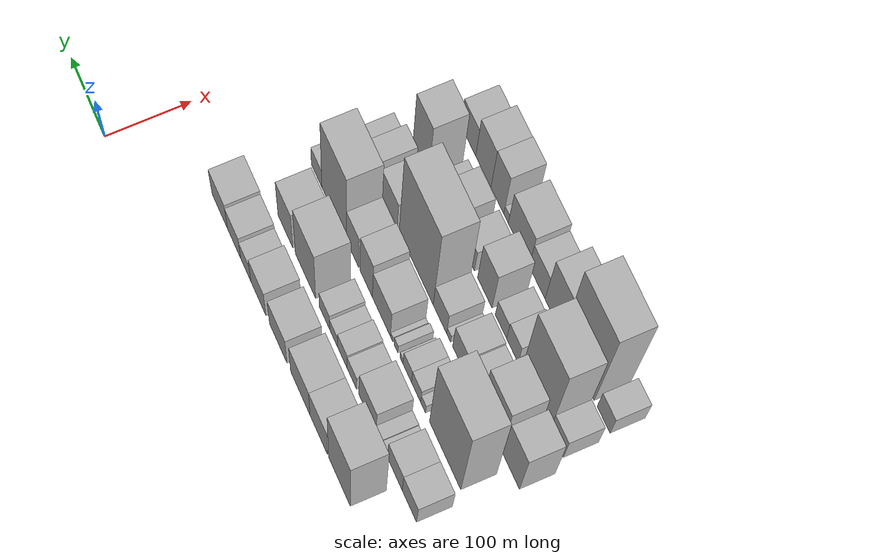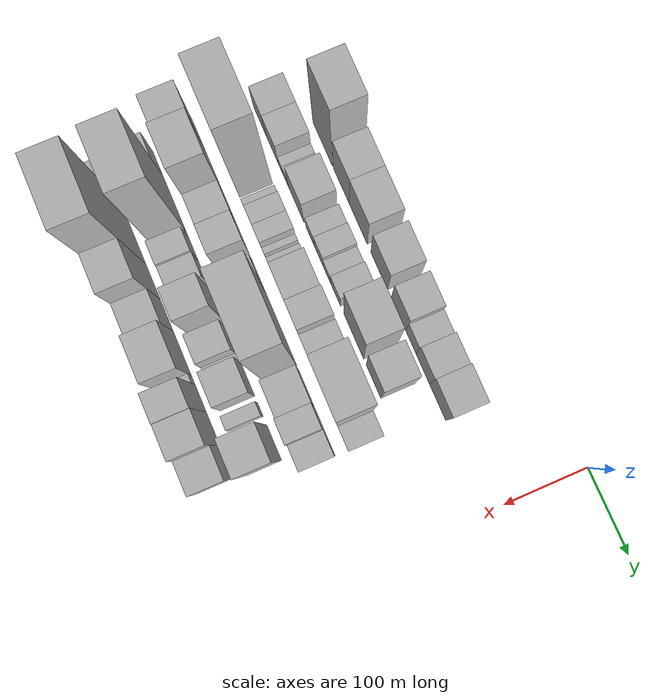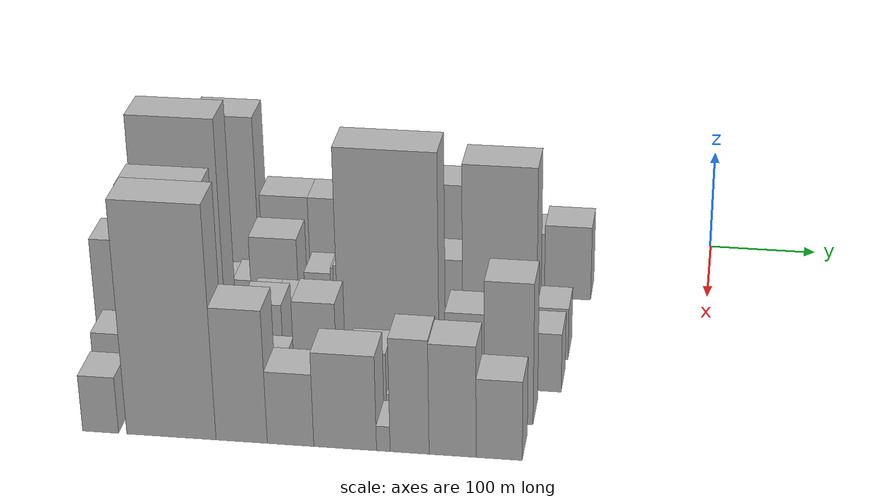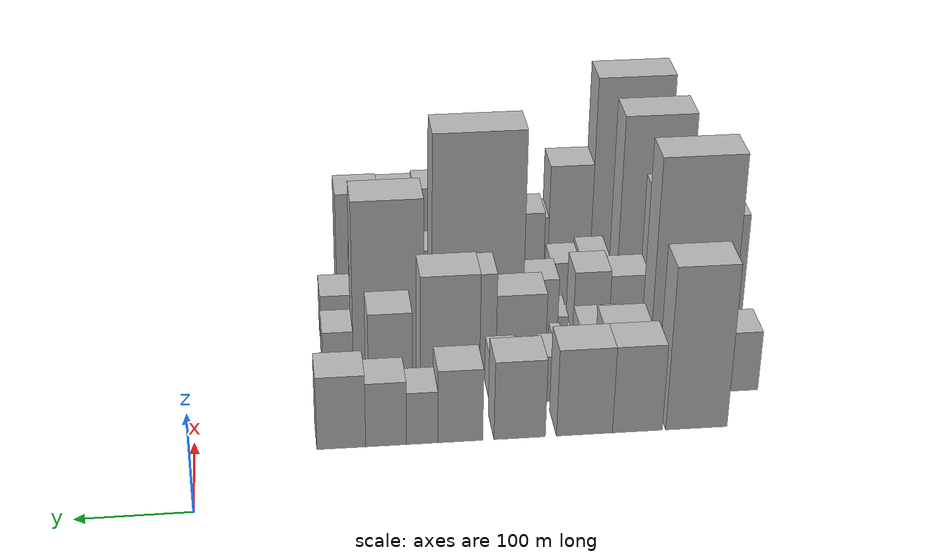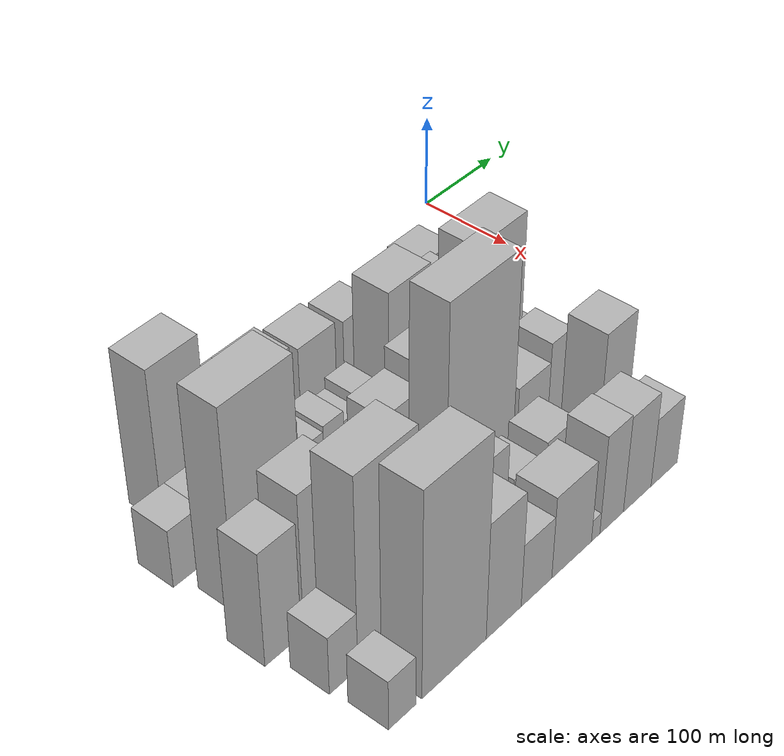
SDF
<sdf version="1.6">
 <world name="default">
  <model name="building_11">
   <static>1</static>
   <pose>100.0000 -446.1428 0 0.000000 0.000000 0.000000</pose>
   <link name="link">
    <pose>0 0 84.00 0 0 0</pose>
    <collision name="collision"><geometry><box><size>40.0000 55.7430 168.0000</size></box></geometry></collision>
    <visual name="visual">
     <cast_shadows>0</cast_shadows>
     <geometry><box><size>40.0000 55.7430 168.0000</size></box></geometry>
     <material>
      <script>
       <uri>model://HANNAS_wall/materials/scripts</uri>
       <uri>model://HANNAS_wall/materials/textures</uri>
       <name>vrc/HANNAS_wall</name>
      </script>
     </material>
    </visual>
   </link>
  </model>
  <model name="building_12">
   <static>1</static>
   <pose>100.0000 -392.7327 0 0.000000 0.000000 0.000000</pose>
   <link name="link">
    <pose>0 0 45.00 0 0 0</pose>
    <collision name="collision"><geometry><box><size>40.0000 45.0773 90.0000</size></box></geometry></collision>
    <visual name="visual">
     <cast_shadows>0</cast_shadows>
     <geometry><box><size>40.0000 45.0773 90.0000</size></box></geometry>
     <material>
      <script>
       <uri>model://HANNAS_wall/materials/scripts</uri>
       <uri>model://HANNAS_wall/materials/textures</uri>
       <name>vrc/HANNAS_wall</name>
      </script>
     </material>
    </visual>
   </link>
  </model>
  <model name="building_13">
   <static>1</static>
   <pose>100.0000 -344.9859 0 0.000000 0.000000 0.000000</pose>
   <link name="link">
    <pose>0 0 45.00 0 0 0</pose>
    <collision name="collision"><geometry><box><size>40.0000 50.4162 90.0000</size></box></geometry></collision>
    <visual name="visual">
     <cast_shadows>0</cast_shadows>
     <geometry><box><size>40.0000 50.4162 90.0000</size></box></geometry>
     <material>
      <script>
       <uri>model://HANNAS_wall/materials/scripts</uri>
       <uri>model://HANNAS_wall/materials/textures</uri>
       <name>vrc/HANNAS_wall</name>
      </script>
     </material>
    </visual>
   </link>
  </model>
  <model name="building_14">
   <static>1</static>
   <pose>100.0000 -286.7651 0 0.000000 0.000000 0.000000</pose>
   <link name="link">
    <pose>0 0 40.50 0 0 0</pose>
    <collision name="collision"><geometry><box><size>40.0000 46.0253 81.0000</size></box></geometry></collision>
    <visual name="visual">
     <cast_shadows>0</cast_shadows>
     <geometry><box><size>40.0000 46.0253 81.0000</size></box></geometry>
     <material>
      <script>
       <uri>model://HANNAS_wall/materials/scripts</uri>
       <uri>model://HANNAS_wall/materials/textures</uri>
       <name>vrc/HANNAS_wall</name>
      </script>
     </material>
    </visual>
   </link>
  </model>
  <model name="building_15">
   <static>1</static>
   <pose>100.0000 -233.7372 0 0.000000 0.000000 0.000000</pose>
   <link name="link">
    <pose>0 0 37.50 0 0 0</pose>
    <collision name="collision"><geometry><box><size>40.0000 40.0307 75.0000</size></box></geometry></collision>
    <visual name="visual">
     <cast_shadows>0</cast_shadows>
     <geometry><box><size>40.0000 40.0307 75.0000</size></box></geometry>
     <material>
      <script>
       <uri>model://HANNAS_wall/materials/scripts</uri>
       <uri>model://HANNAS_wall/materials/textures</uri>
       <name>vrc/HANNAS_wall</name>
      </script>
     </material>
    </visual>
   </link>
  </model>
  <model name="building_16">
   <static>1</static>
   <pose>100.0000 -199.8380 0 0.000000 0.000000 0.000000</pose>
   <link name="link">
    <pose>0 0 27.00 0 0 0</pose>
    <collision name="collision"><geometry><box><size>40.0000 27.7676 54.0000</size></box></geometry></collision>
    <visual name="visual">
     <cast_shadows>0</cast_shadows>
     <geometry><box><size>40.0000 27.7676 54.0000</size></box></geometry>
     <material>
      <script>
       <uri>model://HANNAS_wall/materials/scripts</uri>
       <uri>model://HANNAS_wall/materials/textures</uri>
       <name>vrc/HANNAS_wall</name>
      </script>
     </material>
    </visual>
   </link>
  </model>
  <model name="building_17">
   <static>1</static>
   <pose>100.0000 -167.9313 0 0.000000 0.000000 0.000000</pose>
   <link name="link">
    <pose>0 0 33.00 0 0 0</pose>
    <collision name="collision"><geometry><box><size>40.0000 36.0459 66.0000</size></box></geometry></collision>
    <visual name="visual">
     <cast_shadows>0</cast_shadows>
     <geometry><box><size>40.0000 36.0459 66.0000</size></box></geometry>
     <material>
      <script>
       <uri>model://HANNAS_wall/materials/scripts</uri>
       <uri>model://HANNAS_wall/materials/textures</uri>
       <name>vrc/HANNAS_wall</name>
      </script>
     </material>
    </visual>
   </link>
  </model>
  <model name="building_18">
   <static>1</static>
   <pose>100.0000 -128.4174 0 0.000000 0.000000 0.000000</pose>
   <link name="link">
    <pose>0 0 37.50 0 0 0</pose>
    <collision name="collision"><geometry><box><size>40.0000 42.9818 75.0000</size></box></geometry></collision>
    <visual name="visual">
     <cast_shadows>0</cast_shadows>
     <geometry><box><size>40.0000 42.9818 75.0000</size></box></geometry>
     <material>
      <script>
       <uri>model://HANNAS_wall/materials/scripts</uri>
       <uri>model://HANNAS_wall/materials/textures</uri>
       <name>vrc/HANNAS_wall</name>
      </script>
     </material>
    </visual>
   </link>
  </model>
  <model name="building_55">
   <static>1</static>
   <pose>155.0000 -498.0649 0 0.000000 0.000000 0.000000</pose>
   <link name="link">
    <pose>0 0 31.50 0 0 0</pose>
    <collision name="collision"><geometry><box><size>40.0000 35.6341 63.0000</size></box></geometry></collision>
    <visual name="visual">
     <cast_shadows>0</cast_shadows>
     <geometry><box><size>40.0000 35.6341 63.0000</size></box></geometry>
     <material>
      <script>
       <uri>model://HANNAS_wall/materials/scripts</uri>
       <uri>model://HANNAS_wall/materials/textures</uri>
       <name>vrc/HANNAS_wall</name>
      </script>
     </material>
    </visual>
   </link>
  </model>
  <model name="building_56">
   <static>1</static>
   <pose>155.0000 -461.8014 0 0.000000 0.000000 0.000000</pose>
   <link name="link">
    <pose>0 0 31.50 0 0 0</pose>
    <collision name="collision"><geometry><box><size>40.0000 36.8928 63.0000</size></box></geometry></collision>
    <visual name="visual">
     <cast_shadows>0</cast_shadows>
     <geometry><box><size>40.0000 36.8928 63.0000</size></box></geometry>
     <material>
      <script>
       <uri>model://HANNAS_wall/materials/scripts</uri>
       <uri>model://HANNAS_wall/materials/textures</uri>
       <name>vrc/HANNAS_wall</name>
      </script>
     </material>
    </visual>
   </link>
  </model>
  <model name="building_57">
   <static>1</static>
   <pose>155.0000 -437.0089 0 0.000000 0.000000 0.000000</pose>
   <link name="link">
    <pose>0 0 13.50 0 0 0</pose>
    <collision name="collision"><geometry><box><size>40.0000 12.6923 27.0000</size></box></geometry></collision>
    <visual name="visual">
     <cast_shadows>0</cast_shadows>
     <geometry><box><size>40.0000 12.6923 27.0000</size></box></geometry>
     <material>
      <script>
       <uri>model://HANNAS_wall/materials/scripts</uri>
       <uri>model://HANNAS_wall/materials/textures</uri>
       <name>vrc/HANNAS_wall</name>
      </script>
     </material>
    </visual>
   </link>
  </model>
  <model name="building_58">
   <static>1</static>
   <pose>155.0000 -422.4467 0 0.000000 0.000000 0.000000</pose>
   <link name="link">
    <pose>0 0 15.00 0 0 0</pose>
    <collision name="collision"><geometry><box><size>40.0000 16.4323 30.0000</size></box></geometry></collision>
    <visual name="visual">
     <cast_shadows>0</cast_shadows>
     <geometry><box><size>40.0000 16.4323 30.0000</size></box></geometry>
     <material>
      <script>
       <uri>model://HANNAS_wall/materials/scripts</uri>
       <uri>model://HANNAS_wall/materials/textures</uri>
       <name>vrc/HANNAS_wall</name>
      </script>
     </material>
    </visual>
   </link>
  </model>
  <model name="building_59">
   <static>1</static>
   <pose>155.0000 -392.2543 0 0.000000 0.000000 0.000000</pose>
   <link name="link">
    <pose>0 0 37.50 0 0 0</pose>
    <collision name="collision"><geometry><box><size>40.0000 43.9524 75.0000</size></box></geometry></collision>
    <visual name="visual">
     <cast_shadows>0</cast_shadows>
     <geometry><box><size>40.0000 43.9524 75.0000</size></box></geometry>
     <material>
      <script>
       <uri>model://HANNAS_wall/materials/scripts</uri>
       <uri>model://HANNAS_wall/materials/textures</uri>
       <name>vrc/HANNAS_wall</name>
      </script>
     </material>
    </visual>
   </link>
  </model>
  <model name="building_60">
   <static>1</static>
   <pose>155.0000 -352.2055 0 0.000000 0.000000 0.000000</pose>
   <link name="link">
    <pose>0 0 21.00 0 0 0</pose>
    <collision name="collision"><geometry><box><size>40.0000 24.1453 42.0000</size></box></geometry></collision>
    <visual name="visual">
     <cast_shadows>0</cast_shadows>
     <geometry><box><size>40.0000 24.1453 42.0000</size></box></geometry>
     <material>
      <script>
       <uri>model://HANNAS_wall/materials/scripts</uri>
       <uri>model://HANNAS_wall/materials/textures</uri>
       <name>vrc/HANNAS_wall</name>
      </script>
     </material>
    </visual>
   </link>
  </model>
  <model name="building_61">
   <static>1</static>
   <pose>155.0000 -327.6031 0 0.000000 0.000000 0.000000</pose>
   <link name="link">
    <pose>0 0 24.00 0 0 0</pose>
    <collision name="collision"><geometry><box><size>40.0000 25.0594 48.0000</size></box></geometry></collision>
    <visual name="visual">
     <cast_shadows>0</cast_shadows>
     <geometry><box><size>40.0000 25.0594 48.0000</size></box></geometry>
     <material>
      <script>
       <uri>model://HANNAS_wall/materials/scripts</uri>
       <uri>model://HANNAS_wall/materials/textures</uri>
       <name>vrc/HANNAS_wall</name>
      </script>
     </material>
    </visual>
   </link>
  </model>
  <model name="building_62">
   <static>1</static>
   <pose>155.0000 -304.6756 0 0.000000 0.000000 0.000000</pose>
   <link name="link">
    <pose>0 0 18.00 0 0 0</pose>
    <collision name="collision"><geometry><box><size>40.0000 20.7958 36.0000</size></box></geometry></collision>
    <visual name="visual">
     <cast_shadows>0</cast_shadows>
     <geometry><box><size>40.0000 20.7958 36.0000</size></box></geometry>
     <material>
      <script>
       <uri>model://HANNAS_wall/materials/scripts</uri>
       <uri>model://HANNAS_wall/materials/textures</uri>
       <name>vrc/HANNAS_wall</name>
      </script>
     </material>
    </visual>
   </link>
  </model>
  <model name="building_63">
   <static>1</static>
   <pose>155.0000 -280.7747 0 0.000000 0.000000 0.000000</pose>
   <link name="link">
    <pose>0 0 24.00 0 0 0</pose>
    <collision name="collision"><geometry><box><size>40.0000 27.0058 48.0000</size></box></geometry></collision>
    <visual name="visual">
     <cast_shadows>0</cast_shadows>
     <geometry><box><size>40.0000 27.0058 48.0000</size></box></geometry>
     <material>
      <script>
       <uri>model://HANNAS_wall/materials/scripts</uri>
       <uri>model://HANNAS_wall/materials/textures</uri>
       <name>vrc/HANNAS_wall</name>
      </script>
     </material>
    </visual>
   </link>
  </model>
  <model name="building_64">
   <static>1</static>
   <pose>155.0000 -230.3528 0 0.000000 0.000000 0.000000</pose>
   <link name="link">
    <pose>0 0 69.00 0 0 0</pose>
    <collision name="collision"><geometry><box><size>40.0000 53.8381 138.0000</size></box></geometry></collision>
    <visual name="visual">
     <cast_shadows>0</cast_shadows>
     <geometry><box><size>40.0000 53.8381 138.0000</size></box></geometry>
     <material>
      <script>
       <uri>model://HANNAS_wall/materials/scripts</uri>
       <uri>model://HANNAS_wall/materials/textures</uri>
       <name>vrc/HANNAS_wall</name>
      </script>
     </material>
    </visual>
   </link>
  </model>
  <model name="building_65">
   <static>1</static>
   <pose>155.0000 -176.5464 0 0.000000 0.000000 0.000000</pose>
   <link name="link">
    <pose>0 0 51.00 0 0 0</pose>
    <collision name="collision"><geometry><box><size>40.0000 39.7746 102.0000</size></box></geometry></collision>
    <visual name="visual">
     <cast_shadows>0</cast_shadows>
     <geometry><box><size>40.0000 39.7746 102.0000</size></box></geometry>
     <material>
      <script>
       <uri>model://HANNAS_wall/materials/scripts</uri>
       <uri>model://HANNAS_wall/materials/textures</uri>
       <name>vrc/HANNAS_wall</name>
      </script>
     </material>
    </visual>
   </link>
  </model>
  <model name="building_109">
   <static>1</static>
   <pose>210.0000 -464.5125 0 0.000000 0.000000 0.000000</pose>
   <link name="link">
    <pose>0 0 108.00 0 0 0</pose>
    <collision name="collision"><geometry><box><size>40.0000 77.6664 216.0000</size></box></geometry></collision>
    <visual name="visual">
     <cast_shadows>0</cast_shadows>
     <geometry><box><size>40.0000 77.6664 216.0000</size></box></geometry>
     <material>
      <script>
       <uri>model://HANNAS_wall/materials/scripts</uri>
       <uri>model://HANNAS_wall/materials/textures</uri>
       <name>vrc/HANNAS_wall</name>
      </script>
     </material>
    </visual>
   </link>
  </model>
  <model name="building_110">
   <static>1</static>
   <pose>210.0000 -409.5488 0 0.000000 0.000000 0.000000</pose>
   <link name="link">
    <pose>0 0 13.50 0 0 0</pose>
    <collision name="collision"><geometry><box><size>40.0000 12.2610 27.0000</size></box></geometry></collision>
    <visual name="visual">
     <cast_shadows>0</cast_shadows>
     <geometry><box><size>40.0000 12.2610 27.0000</size></box></geometry>
     <material>
      <script>
       <uri>model://HANNAS_wall/materials/scripts</uri>
       <uri>model://HANNAS_wall/materials/textures</uri>
       <name>vrc/HANNAS_wall</name>
      </script>
     </material>
    </visual>
   </link>
  </model>
  <model name="building_111">
   <static>1</static>
   <pose>210.0000 -391.8953 0 0.000000 0.000000 0.000000</pose>
   <link name="link">
    <pose>0 0 21.00 0 0 0</pose>
    <collision name="collision"><geometry><box><size>40.0000 23.0460 42.0000</size></box></geometry></collision>
    <visual name="visual">
     <cast_shadows>0</cast_shadows>
     <geometry><box><size>40.0000 23.0460 42.0000</size></box></geometry>
     <material>
      <script>
       <uri>model://HANNAS_wall/materials/scripts</uri>
       <uri>model://HANNAS_wall/materials/textures</uri>
       <name>vrc/HANNAS_wall</name>
      </script>
     </material>
    </visual>
   </link>
  </model>
  <model name="building_112">
   <static>1</static>
   <pose>210.0000 -369.5015 0 0.000000 0.000000 0.000000</pose>
   <link name="link">
    <pose>0 0 21.00 0 0 0</pose>
    <collision name="collision"><geometry><box><size>40.0000 21.7416 42.0000</size></box></geometry></collision>
    <visual name="visual">
     <cast_shadows>0</cast_shadows>
     <geometry><box><size>40.0000 21.7416 42.0000</size></box></geometry>
     <material>
      <script>
       <uri>model://HANNAS_wall/materials/scripts</uri>
       <uri>model://HANNAS_wall/materials/textures</uri>
       <name>vrc/HANNAS_wall</name>
      </script>
     </material>
    </visual>
   </link>
  </model>
  <model name="building_113">
   <static>1</static>
   <pose>210.0000 -354.6030 0 0.000000 0.000000 0.000000</pose>
   <link name="link">
    <pose>0 0 9.00 0 0 0</pose>
    <collision name="collision"><geometry><box><size>40.0000 8.0555 18.0000</size></box></geometry></collision>
    <visual name="visual">
     <cast_shadows>0</cast_shadows>
     <geometry><box><size>40.0000 8.0555 18.0000</size></box></geometry>
     <material>
      <script>
       <uri>model://HANNAS_wall/materials/scripts</uri>
       <uri>model://HANNAS_wall/materials/textures</uri>
       <name>vrc/HANNAS_wall</name>
      </script>
     </material>
    </visual>
   </link>
  </model>
  <model name="building_114">
   <static>1</static>
   <pose>210.0000 -340.6029 0 0.000000 0.000000 0.000000</pose>
   <link name="link">
    <pose>0 0 12.00 0 0 0</pose>
    <collision name="collision"><geometry><box><size>40.0000 9.9448 24.0000</size></box></geometry></collision>
    <visual name="visual">
     <cast_shadows>0</cast_shadows>
     <geometry><box><size>40.0000 9.9448 24.0000</size></box></geometry>
     <material>
      <script>
       <uri>model://HANNAS_wall/materials/scripts</uri>
       <uri>model://HANNAS_wall/materials/textures</uri>
       <name>vrc/HANNAS_wall</name>
      </script>
     </material>
    </visual>
   </link>
  </model>
  <model name="building_115">
   <static>1</static>
   <pose>210.0000 -329.5651 0 0.000000 0.000000 0.000000</pose>
   <link name="link">
    <pose>0 0 7.50 0 0 0</pose>
    <collision name="collision"><geometry><box><size>40.0000 6.1308 15.0000</size></box></geometry></collision>
    <visual name="visual">
     <cast_shadows>0</cast_shadows>
     <geometry><box><size>40.0000 6.1308 15.0000</size></box></geometry>
     <material>
      <script>
       <uri>model://HANNAS_wall/materials/scripts</uri>
       <uri>model://HANNAS_wall/materials/textures</uri>
       <name>vrc/HANNAS_wall</name>
      </script>
     </material>
    </visual>
   </link>
  </model>
  <model name="building_116">
   <static>1</static>
   <pose>210.0000 -303.1658 0 0.000000 0.000000 0.000000</pose>
   <link name="link">
    <pose>0 0 40.50 0 0 0</pose>
    <collision name="collision"><geometry><box><size>40.0000 46.6676 81.0000</size></box></geometry></collision>
    <visual name="visual">
     <cast_shadows>0</cast_shadows>
     <geometry><box><size>40.0000 46.6676 81.0000</size></box></geometry>
     <material>
      <script>
       <uri>model://HANNAS_wall/materials/scripts</uri>
       <uri>model://HANNAS_wall/materials/textures</uri>
       <name>vrc/HANNAS_wall</name>
      </script>
     </material>
    </visual>
   </link>
  </model>
  <model name="building_117">
   <static>1</static>
   <pose>210.0000 -263.4186 0 0.000000 0.000000 0.000000</pose>
   <link name="link">
    <pose>0 0 52.50 0 0 0</pose>
    <collision name="collision"><geometry><box><size>40.0000 32.8268 105.0000</size></box></geometry></collision>
    <visual name="visual">
     <cast_shadows>0</cast_shadows>
     <geometry><box><size>40.0000 32.8268 105.0000</size></box></geometry>
     <material>
      <script>
       <uri>model://HANNAS_wall/materials/scripts</uri>
       <uri>model://HANNAS_wall/materials/textures</uri>
       <name>vrc/HANNAS_wall</name>
      </script>
     </material>
    </visual>
   </link>
  </model>
  <model name="building_118">
   <static>1</static>
   <pose>210.0000 -227.9859 0 0.000000 0.000000 0.000000</pose>
   <link name="link">
    <pose>0 0 46.50 0 0 0</pose>
    <collision name="collision"><geometry><box><size>40.0000 32.0386 93.0000</size></box></geometry></collision>
    <visual name="visual">
     <cast_shadows>0</cast_shadows>
     <geometry><box><size>40.0000 32.0386 93.0000</size></box></geometry>
     <material>
      <script>
       <uri>model://HANNAS_wall/materials/scripts</uri>
       <uri>model://HANNAS_wall/materials/textures</uri>
       <name>vrc/HANNAS_wall</name>
      </script>
     </material>
    </visual>
   </link>
  </model>
  <model name="building_119">
   <static>1</static>
   <pose>210.0000 -179.2260 0 0.000000 0.000000 0.000000</pose>
   <link name="link">
    <pose>0 0 93.00 0 0 0</pose>
    <collision name="collision"><geometry><box><size>40.0000 65.4813 186.0000</size></box></geometry></collision>
    <visual name="visual">
     <cast_shadows>0</cast_shadows>
     <geometry><box><size>40.0000 65.4813 186.0000</size></box></geometry>
     <material>
      <script>
       <uri>model://HANNAS_wall/materials/scripts</uri>
       <uri>model://HANNAS_wall/materials/textures</uri>
       <name>vrc/HANNAS_wall</name>
      </script>
     </material>
    </visual>
   </link>
  </model>
  <model name="building_120">
   <static>1</static>
   <pose>210.0000 -132.3760 0 0.000000 0.000000 0.000000</pose>
   <link name="link">
    <pose>0 0 25.50 0 0 0</pose>
    <collision name="collision"><geometry><box><size>40.0000 28.2187 51.0000</size></box></geometry></collision>
    <visual name="visual">
     <cast_shadows>0</cast_shadows>
     <geometry><box><size>40.0000 28.2187 51.0000</size></box></geometry>
     <material>
      <script>
       <uri>model://HANNAS_wall/materials/scripts</uri>
       <uri>model://HANNAS_wall/materials/textures</uri>
       <name>vrc/HANNAS_wall</name>
      </script>
     </material>
    </visual>
   </link>
  </model>
  <model name="building_166">
   <static>1</static>
   <pose>265.0000 -506.6834 0 0.000000 0.000000 0.000000</pose>
   <link name="link">
    <pose>0 0 61.50 0 0 0</pose>
    <collision name="collision"><geometry><box><size>40.0000 40.1426 123.0000</size></box></geometry></collision>
    <visual name="visual">
     <cast_shadows>0</cast_shadows>
     <geometry><box><size>40.0000 40.1426 123.0000</size></box></geometry>
     <material>
      <script>
       <uri>model://HANNAS_wall/materials/scripts</uri>
       <uri>model://HANNAS_wall/materials/textures</uri>
       <name>vrc/HANNAS_wall</name>
      </script>
     </material>
    </visual>
   </link>
  </model>
  <model name="building_167">
   <static>1</static>
   <pose>265.0000 -458.7367 0 0.000000 0.000000 0.000000</pose>
   <link name="link">
    <pose>0 0 75.00 0 0 0</pose>
    <collision name="collision"><geometry><box><size>40.0000 49.7508 150.0000</size></box></geometry></collision>
    <visual name="visual">
     <cast_shadows>0</cast_shadows>
     <geometry><box><size>40.0000 49.7508 150.0000</size></box></geometry>
     <material>
      <script>
       <uri>model://HANNAS_wall/materials/scripts</uri>
       <uri>model://HANNAS_wall/materials/textures</uri>
       <name>vrc/HANNAS_wall</name>
      </script>
     </material>
    </visual>
   </link>
  </model>
  <model name="building_168">
   <static>1</static>
   <pose>265.0000 -415.3518 0 0.000000 0.000000 0.000000</pose>
   <link name="link">
    <pose>0 0 31.50 0 0 0</pose>
    <collision name="collision"><geometry><box><size>40.0000 37.0189 63.0000</size></box></geometry></collision>
    <visual name="visual">
     <cast_shadows>0</cast_shadows>
     <geometry><box><size>40.0000 37.0189 63.0000</size></box></geometry>
     <material>
      <script>
       <uri>model://HANNAS_wall/materials/scripts</uri>
       <uri>model://HANNAS_wall/materials/textures</uri>
       <name>vrc/HANNAS_wall</name>
      </script>
     </material>
    </visual>
   </link>
  </model>
  <model name="building_169">
   <static>1</static>
   <pose>265.0000 -379.3782 0 0.000000 0.000000 0.000000</pose>
   <link name="link">
    <pose>0 0 34.50 0 0 0</pose>
    <collision name="collision"><geometry><box><size>40.0000 34.9284 69.0000</size></box></geometry></collision>
    <visual name="visual">
     <cast_shadows>0</cast_shadows>
     <geometry><box><size>40.0000 34.9284 69.0000</size></box></geometry>
     <material>
      <script>
       <uri>model://HANNAS_wall/materials/scripts</uri>
       <uri>model://HANNAS_wall/materials/textures</uri>
       <name>vrc/HANNAS_wall</name>
      </script>
     </material>
    </visual>
   </link>
  </model>
  <model name="building_170">
   <static>1</static>
   <pose>265.0000 -351.8828 0 0.000000 0.000000 0.000000</pose>
   <link name="link">
    <pose>0 0 10.50 0 0 0</pose>
    <collision name="collision"><geometry><box><size>40.0000 10.0622 21.0000</size></box></geometry></collision>
    <visual name="visual">
     <cast_shadows>0</cast_shadows>
     <geometry><box><size>40.0000 10.0622 21.0000</size></box></geometry>
     <material>
      <script>
       <uri>model://HANNAS_wall/materials/scripts</uri>
       <uri>model://HANNAS_wall/materials/textures</uri>
       <name>vrc/HANNAS_wall</name>
      </script>
     </material>
    </visual>
   </link>
  </model>
  <model name="building_171">
   <static>1</static>
   <pose>265.0000 -329.7954 0 0.000000 0.000000 0.000000</pose>
   <link name="link">
    <pose>0 0 31.50 0 0 0</pose>
    <collision name="collision"><geometry><box><size>40.0000 34.1126 63.0000</size></box></geometry></collision>
    <visual name="visual">
     <cast_shadows>0</cast_shadows>
     <geometry><box><size>40.0000 34.1126 63.0000</size></box></geometry>
     <material>
      <script>
       <uri>model://HANNAS_wall/materials/scripts</uri>
       <uri>model://HANNAS_wall/materials/textures</uri>
       <name>vrc/HANNAS_wall</name>
      </script>
     </material>
    </visual>
   </link>
  </model>
  <model name="building_172">
   <static>1</static>
   <pose>265.0000 -268.9249 0 0.000000 0.000000 0.000000</pose>
   <link name="link">
    <pose>0 0 111.00 0 0 0</pose>
    <collision name="collision"><geometry><box><size>40.0000 87.6284 222.0000</size></box></geometry></collision>
    <visual name="visual">
     <cast_shadows>0</cast_shadows>
     <geometry><box><size>40.0000 87.6284 222.0000</size></box></geometry>
     <material>
      <script>
       <uri>model://HANNAS_wall/materials/scripts</uri>
       <uri>model://HANNAS_wall/materials/textures</uri>
       <name>vrc/HANNAS_wall</name>
      </script>
     </material>
    </visual>
   </link>
  </model>
  <model name="building_173">
   <static>1</static>
   <pose>265.0000 -198.6326 0 0.000000 0.000000 0.000000</pose>
   <link name="link">
    <pose>0 0 36.00 0 0 0</pose>
    <collision name="collision"><geometry><box><size>40.0000 42.9563 72.0000</size></box></geometry></collision>
    <visual name="visual">
     <cast_shadows>0</cast_shadows>
     <geometry><box><size>40.0000 42.9563 72.0000</size></box></geometry>
     <material>
      <script>
       <uri>model://HANNAS_wall/materials/scripts</uri>
       <uri>model://HANNAS_wall/materials/textures</uri>
       <name>vrc/HANNAS_wall</name>
      </script>
     </material>
    </visual>
   </link>
  </model>
  <model name="building_174">
   <static>1</static>
   <pose>265.0000 -163.0500 0 0.000000 0.000000 0.000000</pose>
   <link name="link">
    <pose>0 0 46.50 0 0 0</pose>
    <collision name="collision"><geometry><box><size>40.0000 28.2089 93.0000</size></box></geometry></collision>
    <visual name="visual">
     <cast_shadows>0</cast_shadows>
     <geometry><box><size>40.0000 28.2089 93.0000</size></box></geometry>
     <material>
      <script>
       <uri>model://HANNAS_wall/materials/scripts</uri>
       <uri>model://HANNAS_wall/materials/textures</uri>
       <name>vrc/HANNAS_wall</name>
      </script>
     </material>
    </visual>
   </link>
  </model>
  <model name="building_175">
   <static>1</static>
   <pose>265.0000 -134.1187 0 0.000000 0.000000 0.000000</pose>
   <link name="link">
    <pose>0 0 28.50 0 0 0</pose>
    <collision name="collision"><geometry><box><size>40.0000 29.6537 57.0000</size></box></geometry></collision>
    <visual name="visual">
     <cast_shadows>0</cast_shadows>
     <geometry><box><size>40.0000 29.6537 57.0000</size></box></geometry>
     <material>
      <script>
       <uri>model://HANNAS_wall/materials/scripts</uri>
       <uri>model://HANNAS_wall/materials/textures</uri>
       <name>vrc/HANNAS_wall</name>
      </script>
     </material>
    </visual>
   </link>
  </model>
  <model name="building_216">
   <static>1</static>
   <pose>320.0000 -498.9936 0 0.000000 0.000000 0.000000</pose>
   <link name="link">
    <pose>0 0 31.50 0 0 0</pose>
    <collision name="collision"><geometry><box><size>40.0000 31.6450 63.0000</size></box></geometry></collision>
    <visual name="visual">
     <cast_shadows>0</cast_shadows>
     <geometry><box><size>40.0000 31.6450 63.0000</size></box></geometry>
     <material>
      <script>
       <uri>model://HANNAS_wall/materials/scripts</uri>
       <uri>model://HANNAS_wall/materials/textures</uri>
       <name>vrc/HANNAS_wall</name>
      </script>
     </material>
    </visual>
   </link>
  </model>
  <model name="building_217">
   <static>1</static>
   <pose>320.0000 -448.4488 0 0.000000 0.000000 0.000000</pose>
   <link name="link">
    <pose>0 0 102.00 0 0 0</pose>
    <collision name="collision"><geometry><box><size>40.0000 69.4447 204.0000</size></box></geometry></collision>
    <visual name="visual">
     <cast_shadows>0</cast_shadows>
     <geometry><box><size>40.0000 69.4447 204.0000</size></box></geometry>
     <material>
      <script>
       <uri>model://HANNAS_wall/materials/scripts</uri>
       <uri>model://HANNAS_wall/materials/textures</uri>
       <name>vrc/HANNAS_wall</name>
      </script>
     </material>
    </visual>
   </link>
  </model>
  <model name="building_218">
   <static>1</static>
   <pose>320.0000 -409.4947 0 0.000000 0.000000 0.000000</pose>
   <link name="link">
    <pose>0 0 10.50 0 0 0</pose>
    <collision name="collision"><geometry><box><size>40.0000 8.4633 21.0000</size></box></geometry></collision>
    <visual name="visual">
     <cast_shadows>0</cast_shadows>
     <geometry><box><size>40.0000 8.4633 21.0000</size></box></geometry>
     <material>
      <script>
       <uri>model://HANNAS_wall/materials/scripts</uri>
       <uri>model://HANNAS_wall/materials/textures</uri>
       <name>vrc/HANNAS_wall</name>
      </script>
     </material>
    </visual>
   </link>
  </model>
  <model name="building_219">
   <static>1</static>
   <pose>320.0000 -391.0338 0 0.000000 0.000000 0.000000</pose>
   <link name="link">
    <pose>0 0 27.00 0 0 0</pose>
    <collision name="collision"><geometry><box><size>40.0000 28.4586 54.0000</size></box></geometry></collision>
    <visual name="visual">
     <cast_shadows>0</cast_shadows>
     <geometry><box><size>40.0000 28.4586 54.0000</size></box></geometry>
     <material>
      <script>
       <uri>model://HANNAS_wall/materials/scripts</uri>
       <uri>model://HANNAS_wall/materials/textures</uri>
       <name>vrc/HANNAS_wall</name>
      </script>
     </material>
    </visual>
   </link>
  </model>
  <model name="building_220">
   <static>1</static>
   <pose>320.0000 -362.6781 0 0.000000 0.000000 0.000000</pose>
   <link name="link">
    <pose>0 0 24.00 0 0 0</pose>
    <collision name="collision"><geometry><box><size>40.0000 28.2527 48.0000</size></box></geometry></collision>
    <visual name="visual">
     <cast_shadows>0</cast_shadows>
     <geometry><box><size>40.0000 28.2527 48.0000</size></box></geometry>
     <material>
      <script>
       <uri>model://HANNAS_wall/materials/scripts</uri>
       <uri>model://HANNAS_wall/materials/textures</uri>
       <name>vrc/HANNAS_wall</name>
      </script>
     </material>
    </visual>
   </link>
  </model>
  <model name="building_221">
   <static>1</static>
   <pose>320.0000 -322.3737 0 0.000000 0.000000 0.000000</pose>
   <link name="link">
    <pose>0 0 52.50 0 0 0</pose>
    <collision name="collision"><geometry><box><size>40.0000 36.3563 105.0000</size></box></geometry></collision>
    <visual name="visual">
     <cast_shadows>0</cast_shadows>
     <geometry><box><size>40.0000 36.3563 105.0000</size></box></geometry>
     <material>
      <script>
       <uri>model://HANNAS_wall/materials/scripts</uri>
       <uri>model://HANNAS_wall/materials/textures</uri>
       <name>vrc/HANNAS_wall</name>
      </script>
     </material>
    </visual>
   </link>
  </model>
  <model name="building_222">
   <static>1</static>
   <pose>320.0000 -279.3153 0 0.000000 0.000000 0.000000</pose>
   <link name="link">
    <pose>0 0 30.00 0 0 0</pose>
    <collision name="collision"><geometry><box><size>40.0000 33.7605 60.0000</size></box></geometry></collision>
    <visual name="visual">
     <cast_shadows>0</cast_shadows>
     <geometry><box><size>40.0000 33.7605 60.0000</size></box></geometry>
     <material>
      <script>
       <uri>model://HANNAS_wall/materials/scripts</uri>
       <uri>model://HANNAS_wall/materials/textures</uri>
       <name>vrc/HANNAS_wall</name>
      </script>
     </material>
    </visual>
   </link>
  </model>
  <model name="building_223">
   <static>1</static>
   <pose>320.0000 -257.7270 0 0.000000 0.000000 0.000000</pose>
   <link name="link">
    <pose>0 0 10.50 0 0 0</pose>
    <collision name="collision"><geometry><box><size>40.0000 9.4161 21.0000</size></box></geometry></collision>
    <visual name="visual">
     <cast_shadows>0</cast_shadows>
     <geometry><box><size>40.0000 9.4161 21.0000</size></box></geometry>
     <material>
      <script>
       <uri>model://HANNAS_wall/materials/scripts</uri>
       <uri>model://HANNAS_wall/materials/textures</uri>
       <name>vrc/HANNAS_wall</name>
      </script>
     </material>
    </visual>
   </link>
  </model>
  <model name="building_224">
   <static>1</static>
   <pose>320.0000 -233.2417 0 0.000000 0.000000 0.000000</pose>
   <link name="link">
    <pose>0 0 34.50 0 0 0</pose>
    <collision name="collision"><geometry><box><size>40.0000 39.5544 69.0000</size></box></geometry></collision>
    <visual name="visual">
     <cast_shadows>0</cast_shadows>
     <geometry><box><size>40.0000 39.5544 69.0000</size></box></geometry>
     <material>
      <script>
       <uri>model://HANNAS_wall/materials/scripts</uri>
       <uri>model://HANNAS_wall/materials/textures</uri>
       <name>vrc/HANNAS_wall</name>
      </script>
     </material>
    </visual>
   </link>
  </model>
  <model name="building_225">
   <static>1</static>
   <pose>320.0000 -197.3846 0 0.000000 0.000000 0.000000</pose>
   <link name="link">
    <pose>0 0 15.00 0 0 0</pose>
    <collision name="collision"><geometry><box><size>40.0000 16.1598 30.0000</size></box></geometry></collision>
    <visual name="visual">
     <cast_shadows>0</cast_shadows>
     <geometry><box><size>40.0000 16.1598 30.0000</size></box></geometry>
     <material>
      <script>
       <uri>model://HANNAS_wall/materials/scripts</uri>
       <uri>model://HANNAS_wall/materials/textures</uri>
       <name>vrc/HANNAS_wall</name>
      </script>
     </material>
    </visual>
   </link>
  </model>
  <model name="building_226">
   <static>1</static>
   <pose>320.0000 -158.6722 0 0.000000 0.000000 0.000000</pose>
   <link name="link">
    <pose>0 0 67.50 0 0 0</pose>
    <collision name="collision"><geometry><box><size>40.0000 41.2649 135.0000</size></box></geometry></collision>
    <visual name="visual">
     <cast_shadows>0</cast_shadows>
     <geometry><box><size>40.0000 41.2649 135.0000</size></box></geometry>
     <material>
      <script>
       <uri>model://HANNAS_wall/materials/scripts</uri>
       <uri>model://HANNAS_wall/materials/textures</uri>
       <name>vrc/HANNAS_wall</name>
      </script>
     </material>
    </visual>
   </link>
  </model>
  <model name="building_268">
   <static>1</static>
   <pose>375.0000 -495.5490 0 0.000000 0.000000 0.000000</pose>
   <link name="link">
    <pose>0 0 27.00 0 0 0</pose>
    <collision name="collision"><geometry><box><size>40.0000 30.7785 54.0000</size></box></geometry></collision>
    <visual name="visual">
     <cast_shadows>0</cast_shadows>
     <geometry><box><size>40.0000 30.7785 54.0000</size></box></geometry>
     <material>
      <script>
       <uri>model://HANNAS_wall/materials/scripts</uri>
       <uri>model://HANNAS_wall/materials/textures</uri>
       <name>vrc/HANNAS_wall</name>
      </script>
     </material>
    </visual>
   </link>
  </model>
  <model name="building_269">
   <static>1</static>
   <pose>375.0000 -435.1166 0 0.000000 0.000000 0.000000</pose>
   <link name="link">
    <pose>0 0 109.50 0 0 0</pose>
    <collision name="collision"><geometry><box><size>40.0000 76.0863 219.0000</size></box></geometry></collision>
    <visual name="visual">
     <cast_shadows>0</cast_shadows>
     <geometry><box><size>40.0000 76.0863 219.0000</size></box></geometry>
     <material>
      <script>
       <uri>model://HANNAS_wall/materials/scripts</uri>
       <uri>model://HANNAS_wall/materials/textures</uri>
       <name>vrc/HANNAS_wall</name>
      </script>
     </material>
    </visual>
   </link>
  </model>
  <model name="building_270">
   <static>1</static>
   <pose>375.0000 -375.3904 0 0.000000 0.000000 0.000000</pose>
   <link name="link">
    <pose>0 0 63.00 0 0 0</pose>
    <collision name="collision"><geometry><box><size>40.0000 43.3659 126.0000</size></box></geometry></collision>
    <visual name="visual">
     <cast_shadows>0</cast_shadows>
     <geometry><box><size>40.0000 43.3659 126.0000</size></box></geometry>
     <material>
      <script>
       <uri>model://HANNAS_wall/materials/scripts</uri>
       <uri>model://HANNAS_wall/materials/textures</uri>
       <name>vrc/HANNAS_wall</name>
      </script>
     </material>
    </visual>
   </link>
  </model>
  <model name="building_271">
   <static>1</static>
   <pose>375.0000 -334.1449 0 0.000000 0.000000 0.000000</pose>
   <link name="link">
    <pose>0 0 34.50 0 0 0</pose>
    <collision name="collision"><geometry><box><size>40.0000 39.1252 69.0000</size></box></geometry></collision>
    <visual name="visual">
     <cast_shadows>0</cast_shadows>
     <geometry><box><size>40.0000 39.1252 69.0000</size></box></geometry>
     <material>
      <script>
       <uri>model://HANNAS_wall/materials/scripts</uri>
       <uri>model://HANNAS_wall/materials/textures</uri>
       <name>vrc/HANNAS_wall</name>
      </script>
     </material>
    </visual>
   </link>
  </model>
  <model name="building_272">
   <static>1</static>
   <pose>375.0000 -288.3120 0 0.000000 0.000000 0.000000</pose>
   <link name="link">
    <pose>0 0 45.00 0 0 0</pose>
    <collision name="collision"><geometry><box><size>40.0000 52.5404 90.0000</size></box></geometry></collision>
    <visual name="visual">
     <cast_shadows>0</cast_shadows>
     <geometry><box><size>40.0000 52.5404 90.0000</size></box></geometry>
     <material>
      <script>
       <uri>model://HANNAS_wall/materials/scripts</uri>
       <uri>model://HANNAS_wall/materials/textures</uri>
       <name>vrc/HANNAS_wall</name>
      </script>
     </material>
    </visual>
   </link>
  </model>
  <model name="building_273">
   <static>1</static>
   <pose>375.0000 -256.3778 0 0.000000 0.000000 0.000000</pose>
   <link name="link">
    <pose>0 0 12.00 0 0 0</pose>
    <collision name="collision"><geometry><box><size>40.0000 11.3281 24.0000</size></box></geometry></collision>
    <visual name="visual">
     <cast_shadows>0</cast_shadows>
     <geometry><box><size>40.0000 11.3281 24.0000</size></box></geometry>
     <material>
      <script>
       <uri>model://HANNAS_wall/materials/scripts</uri>
       <uri>model://HANNAS_wall/materials/textures</uri>
       <name>vrc/HANNAS_wall</name>
      </script>
     </material>
    </visual>
   </link>
  </model>
  <model name="building_274">
   <static>1</static>
   <pose>375.0000 -234.4742 0 0.000000 0.000000 0.000000</pose>
   <link name="link">
    <pose>0 0 54.00 0 0 0</pose>
    <collision name="collision"><geometry><box><size>40.0000 32.4791 108.0000</size></box></geometry></collision>
    <visual name="visual">
     <cast_shadows>0</cast_shadows>
     <geometry><box><size>40.0000 32.4791 108.0000</size></box></geometry>
     <material>
      <script>
       <uri>model://HANNAS_wall/materials/scripts</uri>
       <uri>model://HANNAS_wall/materials/textures</uri>
       <name>vrc/HANNAS_wall</name>
      </script>
     </material>
    </visual>
   </link>
  </model>
  <model name="building_275">
   <static>1</static>
   <pose>375.0000 -198.7635 0 0.000000 0.000000 0.000000</pose>
   <link name="link">
    <pose>0 0 52.50 0 0 0</pose>
    <collision name="collision"><geometry><box><size>40.0000 38.9423 105.0000</size></box></geometry></collision>
    <visual name="visual">
     <cast_shadows>0</cast_shadows>
     <geometry><box><size>40.0000 38.9423 105.0000</size></box></geometry>
     <material>
      <script>
       <uri>model://HANNAS_wall/materials/scripts</uri>
       <uri>model://HANNAS_wall/materials/textures</uri>
       <name>vrc/HANNAS_wall</name>
      </script>
     </material>
    </visual>
   </link>
  </model>
  <model name="building_276">
   <static>1</static>
   <pose>375.0000 -160.2542 0 0.000000 0.000000 0.000000</pose>
   <link name="link">
    <pose>0 0 37.50 0 0 0</pose>
    <collision name="collision"><geometry><box><size>40.0000 38.0763 75.0000</size></box></geometry></collision>
    <visual name="visual">
     <cast_shadows>0</cast_shadows>
     <geometry><box><size>40.0000 38.0763 75.0000</size></box></geometry>
     <material>
      <script>
       <uri>model://HANNAS_wall/materials/scripts</uri>
       <uri>model://HANNAS_wall/materials/textures</uri>
       <name>vrc/HANNAS_wall</name>
      </script>
     </material>
    </visual>
   </link>
  </model>
 </world>
</sdf>
